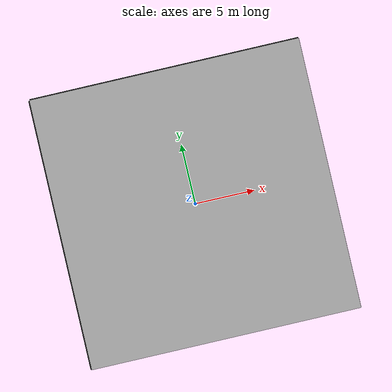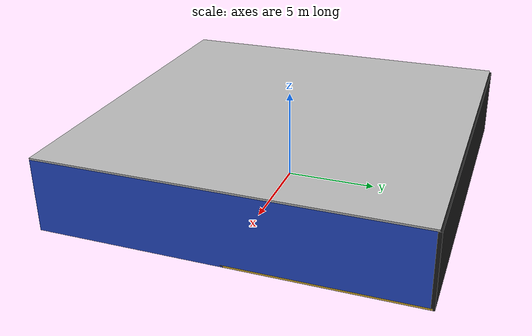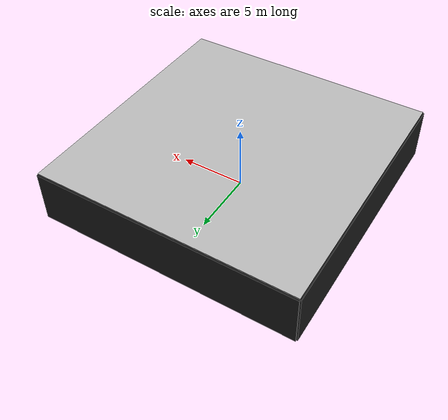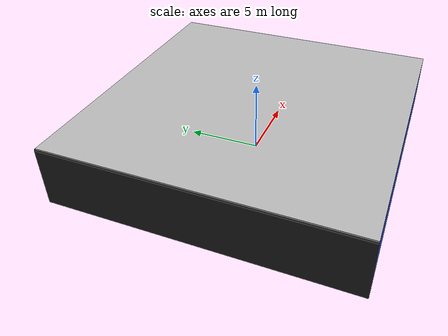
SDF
<sdf version="1.4">
 <world name="default">
  <physics type="ode">
   <max_step_size>0.001</max_step_size>
   <real_time_factor>1</real_time_factor>
   <real_time_update_rate>1000</real_time_update_rate>
   <gravity>0 0 -9.8</gravity>
  </physics>
  <scene><ambient>0.4 0.4 0.4 1</ambient><background>0.7 0.7 0.7 1</background><shadows>1</shadows></scene>
  <model name="Surrounding">
   <static>1</static>
   <link name="Ceiling">
    <collision name="Ceiling_Collision"><geometry><box><size>20 20 0.1</size></box></geometry></collision>
    <visual name="Ceiling_Visual">
     <geometry><box><size>20 20 0.1</size></box></geometry>
     <material>
      <script><uri>file://media/materials/scripts/gazebo.material</uri><name>Gazebo/CloudySky</name></script>
     </material>
    </visual>
    <pose>0 0 4.05 0 0 0</pose>
   </link>
   <link name="Wall_South">
    <collision name="Wall_South_Collision">
     <geometry><box><size>20 0 4</size></box></geometry>
     <pose>0 0 2 0 -0 0</pose>
    </collision>
    <visual name="Wall_South_Visual">
     <pose>0 0 2 0 -0 0</pose>
     <geometry><box><size>20 0 4</size></box></geometry>
     <material>
      <script><uri>file://media/materials/scripts/gazebo.material</uri><name>Gazebo/BlueGlow</name></script>
     </material>
    </visual>
    <velocity_decay><linear>0</linear><angular>0</angular></velocity_decay>
    <pose>0 -10 0 0 -0 0</pose>
   </link>
   <link name="Wall_East">
    <collision name="Wall_21_Collision">
     <geometry><box><size>20 0 4</size></box></geometry>
     <pose>0 0 2 0 -0 0</pose>
    </collision>
    <visual name="Wall_21_Visual">
     <pose>0 0 2 0 -0 0</pose>
     <geometry><box><size>20 0 4</size></box></geometry>
     <material>
      <script><uri>file://media/materials/scripts/gazebo.material</uri><name>Gazebo/Blue</name></script>
     </material>
    </visual>
    <velocity_decay><linear>0</linear><angular>0</angular></velocity_decay>
    <pose>10 0 0 0 -0 1.5708</pose>
   </link>
   <link name="Wall_North">
    <collision name="Wall_22_Collision">
     <geometry><box><size>20 0.2 4</size></box></geometry>
     <pose>0 0 2 0 -0 0</pose>
    </collision>
    <visual name="Wall_22_Visual">
     <pose>0 0 2 0 -0 0</pose>
     <geometry><box><size>20 0.2 4</size></box></geometry>
     <material>
      <script><uri>file://media/materials/scripts/gazebo.material</uri><name>Gazebo/Black</name></script>
     </material>
    </visual>
    <velocity_decay><linear>0</linear><angular>0</angular></velocity_decay>
    <pose>0 10 0 0 -0 0</pose>
   </link>
   <link name="Wall_West">
    <collision name="Wall_23_Collision">
     <geometry><box><size>20 0.2 4</size></box></geometry>
     <pose>0 0 2 0 -0 0</pose>
    </collision>
    <visual name="Wall_23_Visual">
     <pose>0 0 2 0 -0 0</pose>
     <geometry><box><size>20 0.2 4</size></box></geometry>
     <material>
      <script><uri>file://media/materials/scripts/gazebo.material</uri><name>Gazebo/Black</name></script>
     </material>
    </visual>
    <velocity_decay><linear>0</linear><angular>0</angular></velocity_decay>
    <pose>-10 0 0 0 0 -1.5708</pose>
   </link>
   <link name="Ground_link">
    <collision name="collision">
     <pose>0 0 .05 0 -0 0</pose>
     <geometry><box><size>20 20 0.1</size></box></geometry>
    </collision>
    <visual name="visual">
     <pose>0 0 .05 0 -0 0</pose>
     <geometry><box><size>20 20 0.1</size></box></geometry>
     <material>
      <script><uri>file://media/materials/scripts/gazebo.material</uri><name>Gazebo/Gold</name></script>
     </material>
    </visual>
   </link>
   <static>1</static>
  </model>
  <spherical_coordinates>
   <surface_model>EARTH_WGS84</surface_model>
   <latitude_deg>0</latitude_deg>
   <longitude_deg>0</longitude_deg>
   <elevation>0</elevation>
   <heading_deg>0</heading_deg>
  </spherical_coordinates>
  <light name="lightball_0" type="diffuse">
   <diffuse>0.8 0.8 0.8 1</diffuse>
   <specular>0.2 0.2 0.2 1</specular>
   <attenuation>
    <range>100</range>
    <constant>0.7</constant>
    <linear>0.01</linear>
    <quadratic>0.001</quadratic>
   </attenuation>
   <direction>-0.5 0.1 -0.9</direction>
   <pose>4.73224074526 -1.15655160493 1.63134034082 0 0 0</pose>
  </light>
  <light name="lightball_1" type="diffuse">
   <diffuse>0.8 0.8 0.8 1</diffuse>
   <specular>0.2 0.2 0.2 1</specular>
   <attenuation>
    <range>100</range>
    <constant>0.7</constant>
    <linear>0.01</linear>
    <quadratic>0.001</quadratic>
   </attenuation>
   <direction>-0.5 0.1 -0.9</direction>
   <pose>-3.06545076899 9.46269672761 3.65926051843 0 0 0</pose>
  </light>
  <light name="lightball_2" type="diffuse">
   <diffuse>0.8 0.8 0.8 1</diffuse>
   <specular>0.2 0.2 0.2 1</specular>
   <attenuation>
    <range>100</range>
    <constant>0.7</constant>
    <linear>0.01</linear>
    <quadratic>0.001</quadratic>
   </attenuation>
   <direction>-0.5 0.1 -0.9</direction>
   <pose>8.83080322579 6.90233868619 3.54985162832 0 0 0</pose>
  </light>
  <light name="lightball_3" type="diffuse">
   <diffuse>0.8 0.8 0.8 1</diffuse>
   <specular>0.2 0.2 0.2 1</specular>
   <attenuation>
    <range>100</range>
    <constant>0.7</constant>
    <linear>0.01</linear>
    <quadratic>0.001</quadratic>
   </attenuation>
   <direction>-0.5 0.1 -0.9</direction>
   <pose>-3.15545168244 -3.38100007919 1.23284542617 0 0 0</pose>
  </light>
  <light name="lightball_4" type="diffuse">
   <diffuse>0.8 0.8 0.8 1</diffuse>
   <specular>0.2 0.2 0.2 1</specular>
   <attenuation>
    <range>100</range>
    <constant>0.7</constant>
    <linear>0.01</linear>
    <quadratic>0.001</quadratic>
   </attenuation>
   <direction>-0.5 0.1 -0.9</direction>
   <pose>-4.62405821315 4.30092540393 1.63767561897 0 0 0</pose>
  </light>
  <light name="lightball_5" type="diffuse">
   <diffuse>0.8 0.8 0.8 1</diffuse>
   <specular>0.2 0.2 0.2 1</specular>
   <attenuation>
    <range>100</range>
    <constant>0.7</constant>
    <linear>0.01</linear>
    <quadratic>0.001</quadratic>
   </attenuation>
   <direction>-0.5 0.1 -0.9</direction>
   <pose>6.85712333648 -7.94439097191 2.30216960239 0 0 0</pose>
  </light>
  <include><uri>model://cabinet</uri><pose>-4.44660726723 1.27520541484 0 0 0 2.01056453561</pose></include>
  <include>
   <uri>model://construction_cone</uri>
   <pose>-1.38464162807 -7.02549229939 0 0 0 1.39308137634</pose>
  </include>
  <include>
   <uri>model://textured_shapes</uri>
   <pose>1.05284868873 1.96020550846 0 0 0 1.99507507926</pose>
  </include>
  <include><uri>model://table</uri><pose>5.11626807784 4.23864908017 0 0 0 1.56701665013</pose></include>
 </world>
</sdf>

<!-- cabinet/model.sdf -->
<sdf version="1.5">
  <model name="cabinet">
    <static>true</static>
    <link name="cabinet_bottom_plate">
      <inertial>
        <pose>0 0 -1 0 0 0</pose>
        <inertia>
          <ixx>2.050000</ixx>
          <ixy>0</ixy>
          <ixz>0</ixz>
          <iyy>2.050000</iyy>
          <iyz>0</iyz>
          <izz>2.050000</izz>
        </inertia>
        <mass>25.000000</mass>
      </inertial>
      <collision name="cabinet_bottom_plate_geom">
        <pose>0 0 0.010000 0 0 0</pose>
        <geometry>
          <box>
            <size>0.450000 0.450000 0.020000</size>
          </box>
        </geometry>
      </collision>
      <visual name="cabinet_bottom_plate_geom_visual">
        <pose>0 0 0.010000 0 0 0</pose>
        <geometry>
          <box>
            <size>0.450000 0.450000 0.020000</size>
          </box>
        </geometry>
        <material>
          <script>
            <uri>model://media/materials/scripts/gazebo.material</uri>
            <name>Gazebo/Wood</name>
          </script>
        </material>
      </visual>
      <collision name="cabinet_bottom_plate_geom_cabinet_back_plate">
        <pose>0.235000 0 0.510000 0 0 0</pose>
        <geometry>
          <box>
            <size>0.020000 0.450000 1.020000</size>
          </box>
        </geometry>
      </collision>
      <visual name="cabinet_bottom_plate_geom_cabinet_back_plate_visual">
        <pose>0.235000 0 0.510000 0 0 0</pose>
        <geometry>
          <box>
            <size>0.020000 0.450000 1.020000</size>
          </box>
        </geometry>
        <material>
          <script>
            <uri>model://media/materials/scripts/gazebo.material</uri>
            <name>Gazebo/Wood</name>
          </script>
        </material>
      </visual>
      <collision name="cabinet_bottom_plate_geom_cabinet_left_plate">
        <pose>0 0.235000 0.510000 0 0 0</pose>
        <geometry>
          <box>
            <size>0.450000 0.020000 1.020000</size>
          </box>
        </geometry>
      </collision>
      <visual name="cabinet_bottom_plate_geom_cabinet_left_plate_visual">
        <pose>0 0.235000 0.510000 0 0 0</pose>
        <geometry>
          <box>
            <size>0.450000 0.020000 1.020000</size>
          </box>
        </geometry>
        <material>
          <script>
            <uri>model://media/materials/scripts/gazebo.material</uri>
            <name>Gazebo/Wood</name>
          </script>
        </material>
      </visual>
      <collision name="cabinet_bottom_plate_geom_cabinet_middle_plate">
        <pose>0 0 0.510000 0 0 0</pose>
        <geometry>
          <box>
            <size>0.450000 0.450000 0.020000</size>
          </box>
        </geometry>
      </collision>
      <visual name="cabinet_bottom_plate_geom_cabinet_middle_plate_visual">
        <pose>0 0 0.510000 0 0 0</pose>
        <geometry>
          <box>
            <size>0.450000 0.450000 0.020000</size>
          </box>
        </geometry>
        <material>
          <script>
            <uri>model://media/materials/scripts/gazebo.material</uri>
            <name>Gazebo/Wood</name>
          </script>
        </material>
      </visual>
      <collision name="cabinet_bottom_plate_geom_cabinet_right_plate">
        <pose>0 -0.235000 0.510000 0 0 0</pose>
        <geometry>
          <box>
            <size>0.450000 0.020000 1.020000</size>
          </box>
        </geometry>
      </collision>
      <visual name="cabinet_bottom_plate_geom_cabinet_right_plate_visual">
        <pose>0 -0.235000 0.510000 0 0 0</pose>
        <geometry>
          <box>
            <size>0.450000 0.020000 1.020000</size>
          </box>
        </geometry>
        <material>
          <script>
            <uri>model://media/materials/scripts/gazebo.material</uri>
            <name>Gazebo/Wood</name>
          </script>
        </material>
      </visual>
      <collision name="cabinet_bottom_plate_geom_cabinet_top_plate">
        <pose>0 0 1.010000 0 0 0</pose>
        <geometry>
          <box>
            <size>0.450000 0.450000 0.020000</size>
          </box>
        </geometry>
      </collision>
      <visual name="cabinet_bottom_plate_geom_cabinet_top_plate_visual">
        <pose>0 0 1.010000 0 0 0</pose>
        <geometry>
          <box>
            <size>0.450000 0.450000 0.020000</size>
          </box>
        </geometry>
        <material>
          <script>
            <uri>model://media/materials/scripts/gazebo.material</uri>
            <name>Gazebo/Wood</name>
          </script>
        </material>
      </visual>
    </link>
  </model>
</sdf>

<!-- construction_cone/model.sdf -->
<sdf version="1.5">
  <model name="Construction Cone">
    <link name="link">
      <collision name="collision">
        <geometry>
          <mesh>
            <scale>10 10 10</scale>
            <uri>file://isr-testbed/construction_cone/meshes/construction_cone.dae</uri>
          </mesh>
        </geometry>
      </collision>
      <visual name="visual">
        <geometry>
          <mesh>
            <scale>10 10 10</scale>
            <uri>file://isr-testbed/construction_cone/meshes/construction_cone.dae</uri>
          </mesh>
        </geometry>
      </visual>
    </link>
  </model>
</sdf>

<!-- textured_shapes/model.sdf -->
<sdf version="1.6">
  <model name="textured_shapes">
    <pose>0 0 0.5 0 0 0</pose>
    <link name="box">
      <pose>0 -1.5 0 0 0 0</pose>
      <collision name="collision">
        <geometry>
          <box>
            <size>1 1 1</size>
          </box>
        </geometry>
      </collision>
      <visual name="visual">
        <geometry>
          <box>
            <size>1 1 1</size>
          </box>
        </geometry>
        <material>
          <script>
            <uri>model://../model_source/models/textured_shapes/materials/scripts</uri>
            <uri>model://../model_source/models/textured_shapes/materials/textures</uri>
            <name>TexturedShape/Squares</name>
          </script>
        </material>
      </visual>
    </link>
    <link name="sphere">
      <collision name="collision">
        <geometry>
          <sphere>
            <radius>0.5</radius>
          </sphere>
        </geometry>
      </collision>
      <visual name="visual">
        <geometry>
          <sphere>
            <radius>0.5</radius>
          </sphere>
        </geometry>
        <material>
          <script>
            <uri>model://../model_source/models/textured_shapes/materials/scripts</uri>
            <uri>model://../model_source/models/textured_shapes/materials/textures</uri>
            <name>TexturedShape/Squares</name>
          </script>
        </material>
      </visual>
    </link>
    <link name="cylinder">
      <pose>0 1.5 0 0 0 0</pose>
      <collision name="collision">
        <geometry>
          <cylinder>
            <radius>0.5</radius>
            <length>1</length>
          </cylinder>
        </geometry>
      </collision>
      <visual name="visual">
        <geometry>
          <cylinder>
            <radius>0.5</radius>
            <length>1</length>
          </cylinder>
        </geometry>
        <material>
          <script>
            <uri>model://../model_source/models/textured_shapes/materials/scripts</uri>
            <uri>model://../model_source/models/textured_shapes/materials/textures</uri>
            <name>TexturedShape/Squares</name>
          </script>
        </material>
      </visual>
    </link>
  </model>
</sdf>

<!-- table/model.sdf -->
<sdf version="1.5">
  <model name="table">
    <static>true</static>
    <link name="link">
      <collision name="surface">
        <pose>0 0 1.0 0 0 0</pose>
        <geometry>
          <box>
            <size>1.5 0.8 0.03</size>
          </box>
        </geometry>
        <surface>
          <friction>
            <ode>
              <mu>0.6</mu>
              <mu2>0.6</mu2>
            </ode>
          </friction>
        </surface>
      </collision>
      <visual name="visual1">
        <pose>0 0 1.0 0 0 0</pose>
        <geometry>
          <box>
            <size>1.5 0.8 0.03</size>
          </box>
        </geometry>
        <material>
          <script>
            <uri>model://media/materials/scripts/gazebo.material</uri>
            <name>Gazebo/Wood</name>
          </script>
        </material>
      </visual>
      <collision name="front_left_leg">
        <pose>0.68 0.38 0.5 0 0 0</pose>
        <geometry>
          <cylinder>
            <radius>0.02</radius>
            <length>1.0</length>
          </cylinder>
        </geometry>
      </collision>
      <visual name="front_left_leg">
        <pose>0.68 0.38 0.5 0 0 0</pose>
        <geometry>
          <cylinder>
            <radius>0.02</radius>
            <length>1.0</length>
          </cylinder>
        </geometry>
        <material>
          <script>
            <uri>model://media/materials/scripts/gazebo.material</uri>
            <name>Gazebo/Grey</name>
          </script>
        </material>
      </visual>
      <collision name="front_right_leg">
        <pose>0.68 -0.38 0.5 0 0 0</pose>
        <geometry>
          <cylinder>
            <radius>0.02</radius>
            <length>1.0</length>
          </cylinder>
        </geometry>
      </collision>
      <visual name="front_right_leg">
        <pose>0.68 -0.38 0.5 0 0 0</pose>
        <geometry>
          <cylinder>
            <radius>0.02</radius>
            <length>1.0</length>
          </cylinder>
        </geometry>
        <material>
          <script>
            <uri>model://media/materials/scripts/gazebo.material</uri>
            <name>Gazebo/Grey</name>
          </script>
        </material>
      </visual>
      <collision name="back_right_leg">
        <pose>-0.68 -0.38 0.5 0 0 0</pose>
        <geometry>
          <cylinder>
            <radius>0.02</radius>
            <length>1.0</length>
          </cylinder>
        </geometry>
      </collision>
      <visual name="back_right_leg">
        <pose>-0.68 -0.38 0.5 0 0 0</pose>
        <geometry>
          <cylinder>
            <radius>0.02</radius>
            <length>1.0</length>
          </cylinder>
        </geometry>
        <material>
          <script>
            <uri>model://media/materials/scripts/gazebo.material</uri>
            <name>Gazebo/Grey</name>
          </script>
        </material>
      </visual>
      <collision name="back_left_leg">
        <pose>-0.68 0.38 0.5 0 0 0</pose>
        <geometry>
          <cylinder>
            <radius>0.02</radius>
            <length>1.0</length>
          </cylinder>
        </geometry>
      </collision>
      <visual name="back_left_leg">
        <pose>-0.68 0.38 0.5 0 0 0</pose>
        <geometry>
          <cylinder>
            <radius>0.02</radius>
            <length>1.0</length>
          </cylinder>
        </geometry>
        <material>
          <script>
            <uri>model://media/materials/scripts/gazebo.material</uri>
            <name>Gazebo/Grey</name>
          </script>
        </material>
      </visual>
    </link>
  </model>
</sdf>
